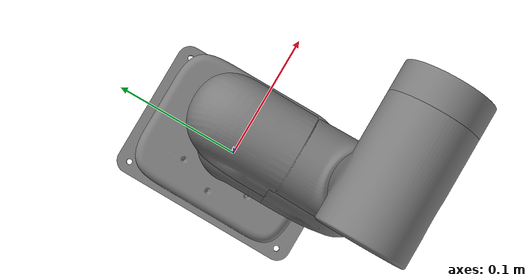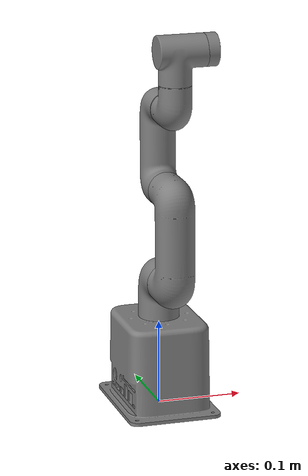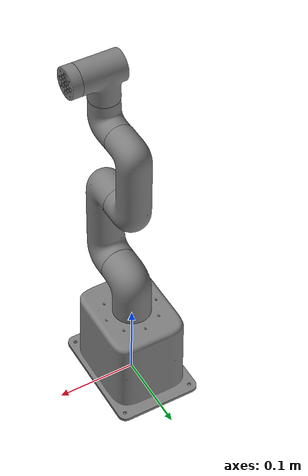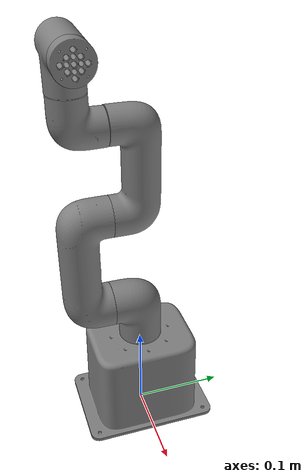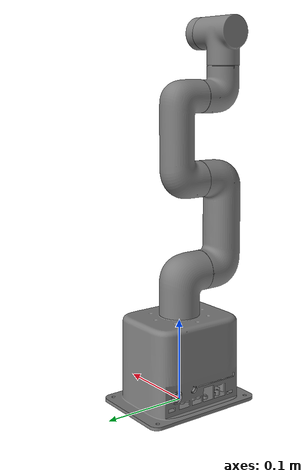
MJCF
<mujoco model="firefighter">
    <compiler angle="radian" meshdir="../meshes_mujoco/" />
    <size njmax="500" nconmax="100" />
    <asset>
        <mesh name="joint1_jet" file="joint1_jet.stl" />
        <mesh name="joint2" file="joint2.stl" />
        <mesh name="joint3" file="joint3.stl" />
        <mesh name="joint4" file="joint4.stl" />
        <mesh name="joint5" file="joint5.stl" />
        <mesh name="joint6" file="joint6.stl" />
        <mesh name="joint7" file="joint7.stl" />
    </asset>
    <worldbody>
        <geom quat="0.000796327 0 0 1" type="mesh" contype="0" conaffinity="0" group="1" mesh="joint1_jet" />
        <geom quat="0.000796327 0 0 1" type="mesh" mesh="joint1_jet" />
        <body name="joint2" pos="0 0 0.15756">
            <inertial pos="-4.46252e-07 -0.0048982 -0.0203936" quat="0.988685 0.150004 1.75753e-05 -6.19332e-05" mass="0.153266" diaginertia="0.00010997 0.000104609 4.89092e-05" />
            <joint name="joint2_to_joint1" pos="0 0 0" axis="0 0 1" limited="true" range="-2.9321 2.9321" />
            <geom pos="0 0 -0.06096" quat="0.707105 0 0 -0.707108" type="mesh" contype="0" conaffinity="0" group="1" mesh="joint2" />
            <geom pos="0 0 -0.06096" quat="0.707105 0 0 -0.707108" type="mesh" mesh="joint2" />
            <body name="joint3" pos="0 0 -0.001" quat="0.499998 0.500002 0.5 -0.5">
                <inertial pos="-0.0548658 -3.79418e-06 0.0581352" quat="0.50338 0.49662 0.497294 0.502669" mass="0.4" diaginertia="0.000569683 0.000554829 8.82752e-05" />
                <joint name="joint3_to_joint2" pos="0 0 0" axis="0 0 1" limited="true" range="-2.0943 2.0943" />
                <geom pos="0 0 0.03256" quat="0.707105 0 -0.707108 0" type="mesh" contype="0" conaffinity="0" group="1" mesh="joint3" />
                <geom pos="0 0 0.03256" quat="0.707105 0 -0.707108 0" type="mesh" mesh="joint3" />
                <body name="joint4" pos="-0.1104 0 0">
                    <inertial pos="-0.0454441 4.51021e-07 0.00478273" quat="0.508392 0.491471 0.491339 0.508508" mass="0.219069" diaginertia="0.000359328 0.000340078 6.35956e-05" />
                    <joint name="joint4_to_joint3" pos="0 0 0" axis="0 0 1" limited="true" range="-2.6179 2.6179" />
                    <geom pos="0 0 0.03056" quat="0.707105 0 -0.707108 0" type="mesh" contype="0" conaffinity="0" group="1" mesh="joint4" />
                    <geom pos="0 0 0.03056" quat="0.707105 0 -0.707108 0" type="mesh" mesh="joint4" />
                    <body name="joint5" pos="-0.096 0 0.06462" quat="0.707105 0 0 -0.707108">
                        <inertial pos="1.49997e-05 -0.00761485 -0.00688111" quat="0.903244 0.429125 -0.00118023 0.00112811" mass="0.0576212" diaginertia="1.88765e-05 1.81573e-05 1.0565e-05" />
                        <joint name="joint5_to_joint4" pos="0 0 0" axis="0 0 1" limited="true" range="-2.5307 2.5307" />
                        <geom pos="0 0 -0.03356" quat="0.707105 -0.707108 0 0" type="mesh" contype="0" conaffinity="0" group="1" mesh="joint5" />
                        <geom pos="0 0 -0.03356" quat="0.707105 -0.707108 0 0" type="mesh" mesh="joint5" />
                        <body name="joint6" pos="0 -0.07318 0" quat="0.499998 0.5 -0.5 0.500002">
                            <inertial pos="-3.34552e-08 0.00487808 -0.00751659" quat="0.395895 0.918296 6.92557e-06 2.44425e-06" mass="0.0904837" diaginertia="4.06947e-05 3.23387e-05 2.57661e-05" />
                            <joint name="joint6_to_joint5" pos="0 0 0" axis="0 0 1" limited="true" range="-2.8797 2.8797" />
                            <geom pos="0 0 -0.038" type="mesh" contype="0" conaffinity="0" group="1" mesh="joint6" />
                            <geom pos="0 0 -0.038" type="mesh" mesh="joint6" />
                            <body name="joint6_flange" pos="0 0.0456 0" quat="0.707105 -0.707108 0 0">
                                <inertial pos="-6.68861e-07 -1.54403e-07 -0.00514555" quat="0.276336 0.650875 -0.27633 0.650877" mass="0.0121397" diaginertia="1.94827e-06 1.13494e-06 1.13491e-06" />
                                <joint name="joint7_to_joint6" pos="0 0 0" axis="0 0 1" limited="true" range="-3.14 3.14159" />
                                <geom pos="0 0 -0.012" type="mesh" contype="0" conaffinity="0" group="1" mesh="joint7" />
                                <geom pos="0 0 -0.012" type="mesh" mesh="joint7" />
                            </body>
                        </body>
                    </body>
                </body>
            </body>
        </body>
    </worldbody>
</mujoco>
